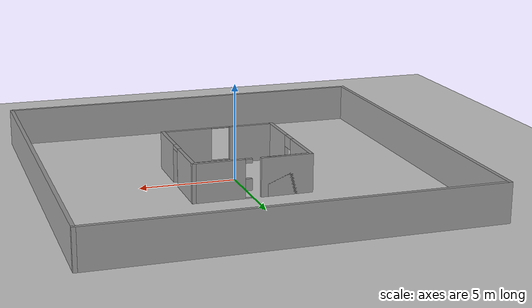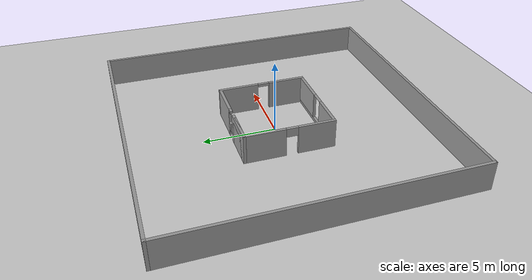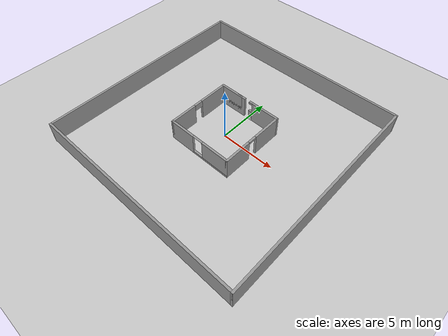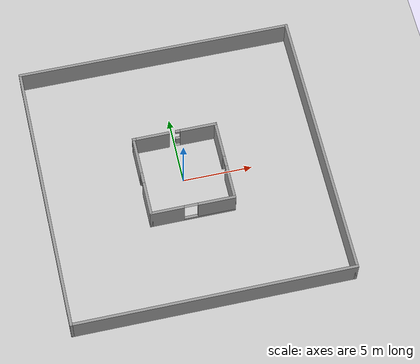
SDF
<sdf version="1.4">
 <world name="default">
  <light name="sun" type="directional">
   <pose>0 0 10 0 -0 0</pose>
   <diffuse>0.8 0.8 0.8 1</diffuse>
   <specular>0.2 0.2 0.2 1</specular>
   <attenuation>
    <range>1000</range>
    <constant>0.9</constant>
    <linear>0.01</linear>
    <quadratic>0.001</quadratic>
   </attenuation>
   <direction>-0.5 0.1 -0.9</direction>
  </light>
  <model name="ground_plane">
   <static>1</static>
   <link name="link">
    <collision name="collision">
     <geometry><plane><normal>0 0 1</normal><size>100 100</size></plane></geometry>
     <surface><friction><ode><mu>100</mu><mu2>50</mu2></ode></friction></surface>
    </collision>
    <visual name="visual">
     <cast_shadows>0</cast_shadows>
     <geometry><plane><normal>0 0 1</normal><size>100 100</size></plane></geometry>
     <material>
      <script><uri>file://media/materials/scripts/gazebo.material</uri><name>Gazebo/Grey</name></script>
     </material>
    </visual>
    <velocity_decay><linear>0</linear><angular>0</angular></velocity_decay>
   </link>
  </model>
  <physics type="ode">
   <max_step_size>0.001</max_step_size>
   <real_time_factor>1</real_time_factor>
   <real_time_update_rate>1000</real_time_update_rate>
   <gravity>0 0 -9.8</gravity>
  </physics>
  <scene><ambient>0.4 0.4 0.4 1</ambient><background>0.7 0.7 0.7 1</background><shadows>1</shadows></scene>
  <model name="BuildingDefaultName">
   <link name="Wall_0">
    <collision name="Wall_0_Collision">
     <geometry><box><size>20.2 0.2 2</size></box></geometry>
     <pose>0 0 1 0 -0 0</pose>
    </collision>
    <visual name="Wall_0_Visual">
     <pose>0 0 1 0 -0 0</pose>
     <geometry><box><size>20.2 0.2 2</size></box></geometry>
     <material>
      <script><uri>file://media/materials/scripts/gazebo.material</uri><name>Gazebo/Grey</name></script>
     </material>
    </visual>
    <velocity_decay><linear>0</linear><angular>0</angular></velocity_decay>
    <pose>-10 0 0 0 0 -1.5708</pose>
   </link>
   <link name="Wall_1">
    <collision name="Wall_1_Collision">
     <geometry><box><size>20.2 0.2 2</size></box></geometry>
     <pose>0 0 1 0 -0 0</pose>
    </collision>
    <visual name="Wall_1_Visual">
     <pose>0 0 1 0 -0 0</pose>
     <geometry><box><size>20.2 0.2 2</size></box></geometry>
     <material>
      <script><uri>file://media/materials/scripts/gazebo.material</uri><name>Gazebo/Grey</name></script>
     </material>
    </visual>
    <velocity_decay><linear>0</linear><angular>0</angular></velocity_decay>
    <pose>0 -10 0 0 -0 0</pose>
   </link>
   <link name="Wall_2">
    <collision name="Wall_2_Collision">
     <geometry><box><size>20.2 0.2 2</size></box></geometry>
     <pose>0 0 1 0 -0 0</pose>
    </collision>
    <visual name="Wall_2_Visual">
     <pose>0 0 1 0 -0 0</pose>
     <geometry><box><size>20.2 0.2 2</size></box></geometry>
     <material>
      <script><uri>file://media/materials/scripts/gazebo.material</uri><name>Gazebo/Grey</name></script>
     </material>
    </visual>
    <velocity_decay><linear>0</linear><angular>0</angular></velocity_decay>
    <pose>10 0 0 0 -0 1.5708</pose>
   </link>
   <link name="Wall_3">
    <collision name="Wall_3_Collision">
     <geometry><box><size>20.2 0.2 2</size></box></geometry>
     <pose>0 0 1 0 -0 0</pose>
    </collision>
    <visual name="Wall_3_Visual">
     <pose>0 0 1 0 -0 0</pose>
     <geometry><box><size>20.2 0.2 2</size></box></geometry>
     <material>
      <script><uri>file://media/materials/scripts/gazebo.material</uri><name>Gazebo/Grey</name></script>
     </material>
    </visual>
    <velocity_decay><linear>0</linear><angular>0</angular></velocity_decay>
    <pose>0 10 0 0 -0 3.14159</pose>
   </link>
   <link name="Wall_5">
    <pose>-3 0 0 0 0 -1.5708</pose>
    <visual name="Wall_5_Visual_0">
     <pose>-1.68049 0 1 0 -0 0</pose>
     <geometry><box><size>2.83902 0.2 2</size></box></geometry>
     <material>
      <script><uri>file://media/materials/scripts/gazebo.material</uri><name>Gazebo/Grey</name></script>
     </material>
    </visual>
    <collision name="Wall_5_Collision_0">
     <geometry><box><size>2.83902 0.2 2</size></box></geometry>
     <pose>-1.68049 0 1 0 -0 0</pose>
    </collision>
    <visual name="Wall_5_Visual_1">
     <pose>1.81951 0 1 0 -0 0</pose>
     <geometry><box><size>2.56098 0.2 2</size></box></geometry>
     <material>
      <script><uri>file://media/materials/scripts/gazebo.material</uri><name>Gazebo/Grey</name></script>
     </material>
    </visual>
    <collision name="Wall_5_Collision_1">
     <geometry><box><size>2.56098 0.2 2</size></box></geometry>
     <pose>1.81951 0 1 0 -0 0</pose>
    </collision>
    <visual name="Wall_5_Visual_2">
     <pose>0.139016 0 1.7 0 -0 0</pose>
     <geometry><box><size>0.8 0.2 0.6</size></box></geometry>
     <material>
      <script><uri>file://media/materials/scripts/gazebo.material</uri><name>Gazebo/Grey</name></script>
     </material>
    </visual>
    <collision name="Wall_5_Collision_2">
     <geometry><box><size>0.8 0.2 0.6</size></box></geometry>
     <pose>0.139016 0 1.7 0 -0 0</pose>
    </collision>
    <velocity_decay><linear>0</linear><angular>0</angular></velocity_decay>
   </link>
   <link name="Wall_6">
    <pose>0 -3 0 0 -0 0</pose>
    <visual name="Wall_6_Visual_0">
     <pose>-1.86282 0 1 0 -0 0</pose>
     <geometry><box><size>2.47436 0.2 2</size></box></geometry>
     <material>
      <script><uri>file://media/materials/scripts/gazebo.material</uri><name>Gazebo/Grey</name></script>
     </material>
    </visual>
    <collision name="Wall_6_Collision_0">
     <geometry><box><size>2.47436 0.2 2</size></box></geometry>
     <pose>-1.86282 0 1 0 -0 0</pose>
    </collision>
    <visual name="Wall_6_Visual_1">
     <pose>1.23718 0 0.1 0 -0 0</pose>
     <geometry><box><size>3.72564 0.2 0.2</size></box></geometry>
     <material>
      <script><uri>file://media/materials/scripts/gazebo.material</uri><name>Gazebo/Grey</name></script>
     </material>
    </visual>
    <collision name="Wall_6_Collision_1">
     <geometry><box><size>3.72564 0.2 0.2</size></box></geometry>
     <pose>1.23718 0 0.1 0 -0 0</pose>
    </collision>
    <visual name="Wall_6_Visual_2">
     <pose>1.73718 0 1.1 0 -0 0</pose>
     <geometry><box><size>2.72564 0.2 1.8</size></box></geometry>
     <material>
      <script><uri>file://media/materials/scripts/gazebo.material</uri><name>Gazebo/Grey</name></script>
     </material>
    </visual>
    <collision name="Wall_6_Collision_2">
     <geometry><box><size>2.72564 0.2 1.8</size></box></geometry>
     <pose>1.73718 0 1.1 0 -0 0</pose>
    </collision>
    <visual name="Wall_6_Visual_3">
     <pose>-0.125637 0 2 0 -0 0</pose>
     <geometry><box><size>1 0.2 0</size></box></geometry>
     <material>
      <script><uri>file://media/materials/scripts/gazebo.material</uri><name>Gazebo/Grey</name></script>
     </material>
    </visual>
    <collision name="Wall_6_Collision_3">
     <geometry><box><size>1 0.2 0</size></box></geometry>
     <pose>-0.125637 0 2 0 -0 0</pose>
    </collision>
    <velocity_decay><linear>0</linear><angular>0</angular></velocity_decay>
   </link>
   <link name="Wall_7">
    <pose>3 0 0 0 -0 1.5708</pose>
    <visual name="Wall_7_Visual_0">
     <pose>-1.80202 0 1 0 -0 0</pose>
     <geometry><box><size>2.59596 0.2 2</size></box></geometry>
     <material>
      <script><uri>file://media/materials/scripts/gazebo.material</uri><name>Gazebo/Grey</name></script>
     </material>
    </visual>
    <collision name="Wall_7_Collision_0">
     <geometry><box><size>2.59596 0.2 2</size></box></geometry>
     <pose>-1.80202 0 1 0 -0 0</pose>
    </collision>
    <visual name="Wall_7_Visual_1">
     <pose>1.69798 0 1 0 -0 0</pose>
     <geometry><box><size>2.80404 0.2 2</size></box></geometry>
     <material>
      <script><uri>file://media/materials/scripts/gazebo.material</uri><name>Gazebo/Grey</name></script>
     </material>
    </visual>
    <collision name="Wall_7_Collision_1">
     <geometry><box><size>2.80404 0.2 2</size></box></geometry>
     <pose>1.69798 0 1 0 -0 0</pose>
    </collision>
    <visual name="Wall_7_Visual_2">
     <pose>-0.104036 0 1.9 0 -0 0</pose>
     <geometry><box><size>0.8 0.2 0.2</size></box></geometry>
     <material>
      <script><uri>file://media/materials/scripts/gazebo.material</uri><name>Gazebo/Grey</name></script>
     </material>
    </visual>
    <collision name="Wall_7_Collision_2">
     <geometry><box><size>0.8 0.2 0.2</size></box></geometry>
     <pose>-0.104036 0 1.9 0 -0 0</pose>
    </collision>
    <velocity_decay><linear>0</linear><angular>0</angular></velocity_decay>
   </link>
   <link name="Wall_8">
    <pose>0 3 0 0 -0 3.14159</pose>
    <visual name="Wall_8_Visual_0">
     <pose>-1.7511 0 1 0 -0 0</pose>
     <geometry><box><size>2.6978 0.2 2</size></box></geometry>
     <material>
      <script><uri>file://media/materials/scripts/gazebo.material</uri><name>Gazebo/Grey</name></script>
     </material>
    </visual>
    <collision name="Wall_8_Collision_0">
     <geometry><box><size>2.6978 0.2 2</size></box></geometry>
     <pose>-1.7511 0 1 0 -0 0</pose>
    </collision>
    <visual name="Wall_8_Visual_1">
     <pose>1.7489 0 1 0 -0 0</pose>
     <geometry><box><size>2.70221 0.2 2</size></box></geometry>
     <material>
      <script><uri>file://media/materials/scripts/gazebo.material</uri><name>Gazebo/Grey</name></script>
     </material>
    </visual>
    <collision name="Wall_8_Collision_1">
     <geometry><box><size>2.70221 0.2 2</size></box></geometry>
     <pose>1.7489 0 1 0 -0 0</pose>
    </collision>
    <visual name="Wall_8_Visual_2">
     <pose>1.9238 0 1 0 -0 0</pose>
     <geometry><box><size>2.3524 0.2 2</size></box></geometry>
     <material>
      <script><uri>file://media/materials/scripts/gazebo.material</uri><name>Gazebo/Grey</name></script>
     </material>
    </visual>
    <collision name="Wall_8_Collision_2">
     <geometry><box><size>2.3524 0.2 2</size></box></geometry>
     <pose>1.9238 0 1 0 -0 0</pose>
    </collision>
    <visual name="Wall_8_Visual_3">
     <pose>-0.227304 0 0 0 -0 0</pose>
     <geometry><box><size>0.349801 0.2 0</size></box></geometry>
     <material>
      <script><uri>file://media/materials/scripts/gazebo.material</uri><name>Gazebo/Grey</name></script>
     </material>
    </visual>
    <collision name="Wall_8_Collision_3">
     <geometry><box><size>0.349801 0.2 0</size></box></geometry>
     <pose>-0.227304 0 0 0 -0 0</pose>
    </collision>
    <visual name="Wall_8_Visual_4">
     <pose>-0.227304 0 0.7 0 -0 0</pose>
     <geometry><box><size>0.349801 0.2 0.6</size></box></geometry>
     <material>
      <script><uri>file://media/materials/scripts/gazebo.material</uri><name>Gazebo/Grey</name></script>
     </material>
    </visual>
    <collision name="Wall_8_Collision_4">
     <geometry><box><size>0.349801 0.2 0.6</size></box></geometry>
     <pose>-0.227304 0 0.7 0 -0 0</pose>
    </collision>
    <visual name="Wall_8_Visual_5">
     <pose>-0.227304 0 1.9 0 -0 0</pose>
     <geometry><box><size>0.349801 0.2 0.2</size></box></geometry>
     <material>
      <script><uri>file://media/materials/scripts/gazebo.material</uri><name>Gazebo/Grey</name></script>
     </material>
    </visual>
    <collision name="Wall_8_Collision_5">
     <geometry><box><size>0.349801 0.2 0.2</size></box></geometry>
     <pose>-0.227304 0 1.9 0 -0 0</pose>
    </collision>
    <velocity_decay><linear>0</linear><angular>0</angular></velocity_decay>
   </link>
   <static>1</static>
  </model>
 </world>
</sdf>
